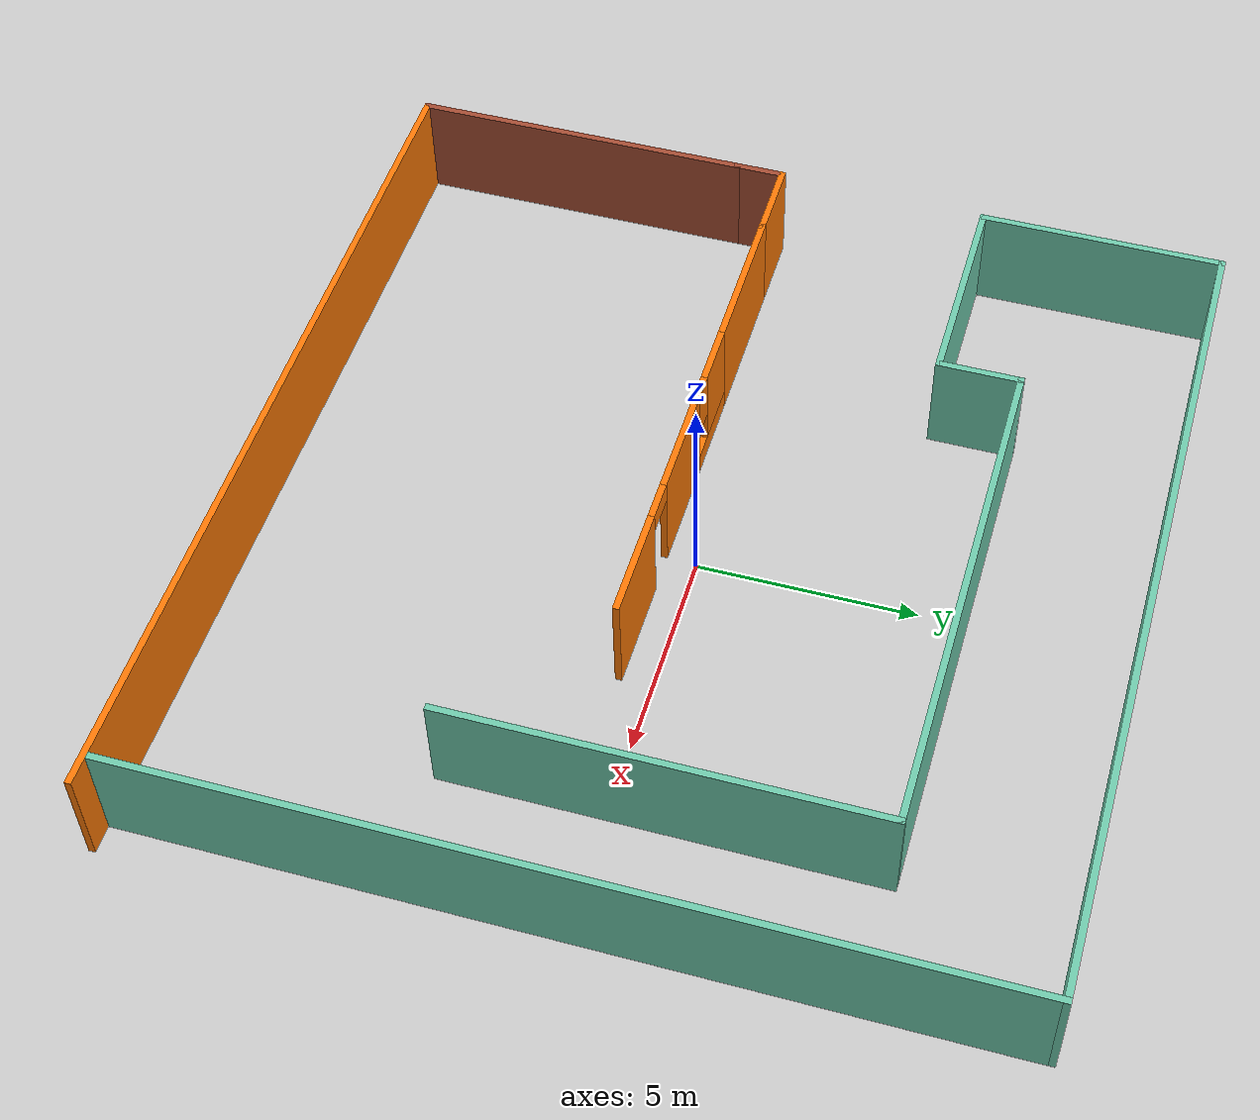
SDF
<?xml version='1.0'?>
<sdf version='1.6'>
  <model name='building1'>
    <pose frame=''>0.105 0.025827 0 0 -0 0</pose>
    <link name='Wall_0'>
      <pose frame=''>-3.675 -0.775827 0 0 -0 3.14159</pose>
      <visual name='Wall_0_Visual_0'>
        <pose frame=''>-1.1175 0 1.25 0 -0 0</pose>
        <geometry>
          <box>
            <size>0.015 0.15 2.5</size>
          </box>
        </geometry>
        <material>
          <script>
            <uri>file://media/materials/scripts/gazebo.material</uri>
            <name>Gazebo/Grey</name>
          </script>
          <ambient>0.996078 0.47451 0.0196078 1</ambient>
        </material>
        <meta>
          <layer>0</layer>
        </meta>
      </visual>
      <collision name='Wall_0_Collision_0'>
        <geometry>
          <box>
            <size>0.015 0.15 2.5</size>
          </box>
        </geometry>
        <pose frame=''>-1.1175 0 1.25 0 -0 0</pose>
      </collision>
      <visual name='Wall_0_Visual_1'>
        <pose frame=''>0.0075 0 0.25 0 -0 0</pose>
        <geometry>
          <box>
            <size>2.235 0.15 0.5</size>
          </box>
        </geometry>
        <material>
          <script>
            <uri>file://media/materials/scripts/gazebo.material</uri>
            <name>Gazebo/Grey</name>
          </script>
          <ambient>0.996078 0.47451 0.0196078 1</ambient>
        </material>
        <meta>
          <layer>0</layer>
        </meta>
      </visual>
      <collision name='Wall_0_Collision_1'>
        <geometry>
          <box>
            <size>2.235 0.15 0.5</size>
          </box>
        </geometry>
        <pose frame=''>0.0075 0 0.25 0 -0 0</pose>
      </collision>
      <visual name='Wall_0_Visual_2'>
        <pose frame=''>0.4075 0 1.5 0 -0 0</pose>
        <geometry>
          <box>
            <size>1.435 0.15 2</size>
          </box>
        </geometry>
        <material>
          <script>
            <uri>file://media/materials/scripts/gazebo.material</uri>
            <name>Gazebo/Grey</name>
          </script>
          <ambient>0.996078 0.47451 0.0196078 1</ambient>
        </material>
        <meta>
          <layer>0</layer>
        </meta>
      </visual>
      <collision name='Wall_0_Collision_2'>
        <geometry>
          <box>
            <size>1.435 0.15 2</size>
          </box>
        </geometry>
        <pose frame=''>0.4075 0 1.5 0 -0 0</pose>
      </collision>
      <visual name='Wall_0_Visual_3'>
        <pose frame=''>-0.71 0 1.9 0 -0 0</pose>
        <geometry>
          <box>
            <size>0.8 0.15 1.2</size>
          </box>
        </geometry>
        <material>
          <script>
            <uri>file://media/materials/scripts/gazebo.material</uri>
            <name>Gazebo/Grey</name>
          </script>
          <ambient>0.996078 0.47451 0.0196078 1</ambient>
        </material>
        <meta>
          <layer>0</layer>
        </meta>
      </visual>
      <collision name='Wall_0_Collision_3'>
        <geometry>
          <box>
            <size>0.8 0.15 1.2</size>
          </box>
        </geometry>
        <pose frame=''>-0.71 0 1.9 0 -0 0</pose>
      </collision>
    </link>
    <link name='Wall_12'>
      <collision name='Wall_12_Collision'>
        <geometry>
          <box>
            <size>8 0.15 2.5</size>
          </box>
        </geometry>
        <pose frame=''>0 0 1.25 0 -0 0</pose>
      </collision>
      <visual name='Wall_12_Visual'>
        <pose frame=''>0 0 1.25 0 -0 0</pose>
        <geometry>
          <box>
            <size>8 0.15 2.5</size>
          </box>
        </geometry>
        <material>
          <script>
            <uri>file://media/materials/scripts/gazebo.material</uri>
            <name>Gazebo/Bricks</name>
          </script>
          <ambient>1 1 1 1</ambient>
        </material>
        <meta>
          <layer>0</layer>
        </meta>
      </visual>
      <pose frame=''>-10.175 -5.80083 0 0 0 -1.5708</pose>
    </link>
    <link name='Wall_15'>
      <collision name='Wall_15_Collision'>
        <geometry>
          <box>
            <size>20.5 0.15 2.5</size>
          </box>
        </geometry>
        <pose frame=''>0 0 1.25 0 -0 0</pose>
      </collision>
      <visual name='Wall_15_Visual'>
        <pose frame=''>0 0 1.25 0 -0 0</pose>
        <geometry>
          <box>
            <size>20.5 0.15 2.5</size>
          </box>
        </geometry>
        <material>
          <script>
            <uri>file://media/materials/scripts/gazebo.material</uri>
            <name>Gazebo/Grey</name>
          </script>
          <ambient>0.996078 0.47451 0.0196078 1</ambient>
        </material>
        <meta>
          <layer>0</layer>
        </meta>
      </visual>
      <pose frame=''>0 -9.72583 0 0 -0 0</pose>
    </link>
    <link name='Wall_2'>
      <pose frame=''>0.3 -0.775827 0 0 -0 0</pose>
      <visual name='Wall_2_Visual_0'>
        <pose frame=''>-1.7225 0 1.25 0 -0 0</pose>
        <geometry>
          <box>
            <size>2.555 0.15 2.5</size>
          </box>
        </geometry>
        <material>
          <script>
            <uri>file://media/materials/scripts/gazebo.material</uri>
            <name>Gazebo/Grey</name>
          </script>
          <ambient>0.996078 0.47451 0.0196078 1</ambient>
        </material>
        <meta>
          <layer>0</layer>
        </meta>
      </visual>
      <collision name='Wall_2_Collision_0'>
        <geometry>
          <box>
            <size>2.555 0.15 2.5</size>
          </box>
        </geometry>
        <pose frame=''>-1.7225 0 1.25 0 -0 0</pose>
      </collision>
      <visual name='Wall_2_Visual_1'>
        <pose frame=''>1.7275 0 1.25 0 -0 0</pose>
        <geometry>
          <box>
            <size>2.545 0.15 2.5</size>
          </box>
        </geometry>
        <material>
          <script>
            <uri>file://media/materials/scripts/gazebo.material</uri>
            <name>Gazebo/Grey</name>
          </script>
          <ambient>0.996078 0.47451 0.0196078 1</ambient>
        </material>
        <meta>
          <layer>0</layer>
        </meta>
      </visual>
      <collision name='Wall_2_Collision_1'>
        <geometry>
          <box>
            <size>2.545 0.15 2.5</size>
          </box>
        </geometry>
        <pose frame=''>1.7275 0 1.25 0 -0 0</pose>
      </collision>
      <visual name='Wall_2_Visual_2'>
        <pose frame=''>0.005 0 2.25 0 -0 0</pose>
        <geometry>
          <box>
            <size>0.9 0.15 0.5</size>
          </box>
        </geometry>
        <material>
          <script>
            <uri>file://media/materials/scripts/gazebo.material</uri>
            <name>Gazebo/Grey</name>
          </script>
          <ambient>0.996078 0.47451 0.0196078 1</ambient>
        </material>
        <meta>
          <layer>0</layer>
        </meta>
      </visual>
      <collision name='Wall_2_Collision_2'>
        <geometry>
          <box>
            <size>0.9 0.15 0.5</size>
          </box>
        </geometry>
        <pose frame=''>0.005 0 2.25 0 -0 0</pose>
      </collision>
    </link>
    <link name='Wall_20'>
      <collision name='Wall_20_Collision'>
        <geometry>
          <box>
            <size>19.5 0.15 2.5</size>
          </box>
        </geometry>
        <pose frame=''>0 0 1.25 0 -0 0</pose>
      </collision>
      <visual name='Wall_20_Visual'>
        <pose frame=''>0 0 1.25 0 -0 0</pose>
        <geometry>
          <box>
            <size>19.5 0.15 2.5</size>
          </box>
        </geometry>
        <material>
          <script>
            <uri>file://media/materials/scripts/gazebo.material</uri>
            <name>Gazebo/Grey</name>
          </script>
          <ambient>0.435294 0.796078 0.67451 1</ambient>
        </material>
        <meta>
          <layer>0</layer>
        </meta>
      </visual>
      <pose frame=''>9.54547 0.050827 0 0 -0 1.5708</pose>
    </link>
    <link name='Wall_21'>
      <collision name='Wall_21_Collision'>
        <geometry>
          <box>
            <size>19.75 0.15 2.5</size>
          </box>
        </geometry>
        <pose frame=''>0 0 1.25 0 -0 0</pose>
      </collision>
      <visual name='Wall_21_Visual'>
        <pose frame=''>0 0 1.25 0 -0 0</pose>
        <geometry>
          <box>
            <size>19.75 0.15 2.5</size>
          </box>
        </geometry>
        <material>
          <script>
            <uri>file://media/materials/scripts/gazebo.material</uri>
            <name>Gazebo/Grey</name>
          </script>
          <ambient>0.435294 0.796078 0.67451 1</ambient>
        </material>
        <meta>
          <layer>0</layer>
        </meta>
      </visual>
      <pose frame=''>-0.254527 9.72583 0 0 -0 3.14159</pose>
    </link>
    <link name='Wall_22'>
      <collision name='Wall_22_Collision'>
        <geometry>
          <box>
            <size>5.75 0.15 2.5</size>
          </box>
        </geometry>
        <pose frame=''>0 0 1.25 0 -0 0</pose>
      </collision>
      <visual name='Wall_22_Visual'>
        <pose frame=''>0 0 1.25 0 -0 0</pose>
        <geometry>
          <box>
            <size>5.75 0.15 2.5</size>
          </box>
        </geometry>
        <material>
          <script>
            <uri>file://media/materials/scripts/gazebo.material</uri>
            <name>Gazebo/Grey</name>
          </script>
          <ambient>0.435294 0.796078 0.67451 1</ambient>
        </material>
        <meta>
          <layer>0</layer>
        </meta>
      </visual>
      <pose frame=''>-10.0545 6.92583 0 0 0 -1.5708</pose>
    </link>
    <link name='Wall_23'>
      <collision name='Wall_23_Collision'>
        <geometry>
          <box>
            <size>5 0.15 2.5</size>
          </box>
        </geometry>
        <pose frame=''>0 0 1.25 0 -0 0</pose>
      </collision>
      <visual name='Wall_23_Visual'>
        <pose frame=''>0 0 1.25 0 -0 0</pose>
        <geometry>
          <box>
            <size>5 0.15 2.5</size>
          </box>
        </geometry>
        <material>
          <script>
            <uri>file://media/materials/scripts/gazebo.material</uri>
            <name>Gazebo/Grey</name>
          </script>
          <ambient>0.435294 0.796078 0.67451 1</ambient>
        </material>
        <meta>
          <layer>0</layer>
        </meta>
      </visual>
      <pose frame=''>-7.62953 4.12583 0 0 -0 0</pose>
    </link>
    <link name='Wall_24'>
      <collision name='Wall_24_Collision'>
        <geometry>
          <box>
            <size>2 0.15 2.5</size>
          </box>
        </geometry>
        <pose frame=''>0 0 1.25 0 -0 0</pose>
      </collision>
      <visual name='Wall_24_Visual'>
        <pose frame=''>0 0 1.25 0 -0 0</pose>
        <geometry>
          <box>
            <size>2 0.15 2.5</size>
          </box>
        </geometry>
        <material>
          <script>
            <uri>file://media/materials/scripts/gazebo.material</uri>
            <name>Gazebo/Grey</name>
          </script>
          <ambient>0.435294 0.796078 0.67451 1</ambient>
        </material>
        <meta>
          <layer>0</layer>
        </meta>
      </visual>
      <pose frame=''>-5.20453 5.05083 0 0 -0 1.5708</pose>
    </link>
    <link name='Wall_25'>
      <collision name='Wall_25_Collision'>
        <geometry>
          <box>
            <size>12 0.15 2.5</size>
          </box>
        </geometry>
        <pose frame=''>0 0 1.25 0 -0 0</pose>
      </collision>
      <visual name='Wall_25_Visual'>
        <pose frame=''>0 0 1.25 0 -0 0</pose>
        <geometry>
          <box>
            <size>12 0.15 2.5</size>
          </box>
        </geometry>
        <material>
          <script>
            <uri>file://media/materials/scripts/gazebo.material</uri>
            <name>Gazebo/Grey</name>
          </script>
          <ambient>0.435294 0.796078 0.67451 1</ambient>
        </material>
        <meta>
          <layer>0</layer>
        </meta>
      </visual>
      <pose frame=''>0.720473 5.97583 0 0 -0 0</pose>
    </link>
    <link name='Wall_26'>
      <collision name='Wall_26_Collision'>
        <geometry>
          <box>
            <size>9.75 0.15 2.5</size>
          </box>
        </geometry>
        <pose frame=''>0 0 1.25 0 -0 0</pose>
      </collision>
      <visual name='Wall_26_Visual'>
        <pose frame=''>0 0 1.25 0 -0 0</pose>
        <geometry>
          <box>
            <size>9.75 0.15 2.5</size>
          </box>
        </geometry>
        <material>
          <script>
            <uri>file://media/materials/scripts/gazebo.material</uri>
            <name>Gazebo/Grey</name>
          </script>
          <ambient>0.435294 0.796078 0.67451 1</ambient>
        </material>
        <meta>
          <layer>0</layer>
        </meta>
      </visual>
      <pose frame=''>6.64547 1.17583 0 0 0 -1.5708</pose>
    </link>
    <link name='Wall_5'>
      <collision name='Wall_5_Collision'>
        <geometry>
          <box>
            <size>3.75 0.15 2.5</size>
          </box>
        </geometry>
        <pose frame=''>0 0 1.25 0 -0 0</pose>
      </collision>
      <visual name='Wall_5_Visual'>
        <pose frame=''>0 0 1.25 0 -0 0</pose>
        <geometry>
          <box>
            <size>3.75 0.15 2.5</size>
          </box>
        </geometry>
        <material>
          <script>
            <uri>file://media/materials/scripts/gazebo.material</uri>
            <name>Gazebo/Grey</name>
          </script>
          <ambient>0.996078 0.47451 0.0196078 1</ambient>
        </material>
        <meta>
          <layer>0</layer>
        </meta>
      </visual>
      <pose frame=''>-6.525 -0.775827 0 0 -0 3.14159</pose>
    </link>
    <link name='Wall_7'>
      <collision name='Wall_7_Collision'>
        <geometry>
          <box>
            <size>2 0.15 2.5</size>
          </box>
        </geometry>
        <pose frame=''>0 0 1.25 0 -0 0</pose>
      </collision>
      <visual name='Wall_7_Visual'>
        <pose frame=''>0 0 1.25 0 -0 0</pose>
        <geometry>
          <box>
            <size>2 0.15 2.5</size>
          </box>
        </geometry>
        <material>
          <script>
            <uri>file://media/materials/scripts/gazebo.material</uri>
            <name>Gazebo/Grey</name>
          </script>
          <ambient>0.996078 0.47451 0.0196078 1</ambient>
        </material>
        <meta>
          <layer>0</layer>
        </meta>
      </visual>
      <pose frame=''>-9.25 -0.775827 0 0 -0 3.14159</pose>
    </link>
    <link name='Wall_8'>
      <collision name='Wall_8_Collision'>
        <geometry>
          <box>
            <size>1.25 0.15 2.5</size>
          </box>
        </geometry>
        <pose frame=''>0 0 1.25 0 -0 0</pose>
      </collision>
      <visual name='Wall_8_Visual'>
        <pose frame=''>0 0 1.25 0 -0 0</pose>
        <geometry>
          <box>
            <size>1.25 0.15 2.5</size>
          </box>
        </geometry>
        <material>
          <script>
            <uri>file://media/materials/scripts/gazebo.material</uri>
            <name>Gazebo/Bricks</name>
          </script>
          <ambient>1 1 1 1</ambient>
        </material>
        <meta>
          <layer>0</layer>
        </meta>
      </visual>
      <pose frame=''>-10.175 -1.32583 0 0 0 -1.5708</pose>
    </link>
    <static>1</static>
  </model>
</sdf>
